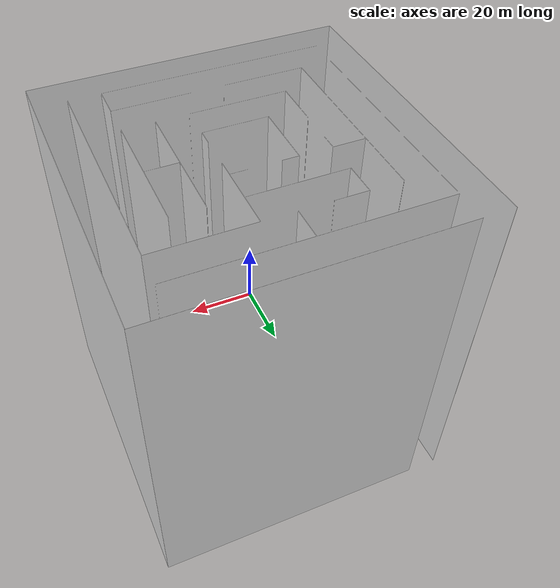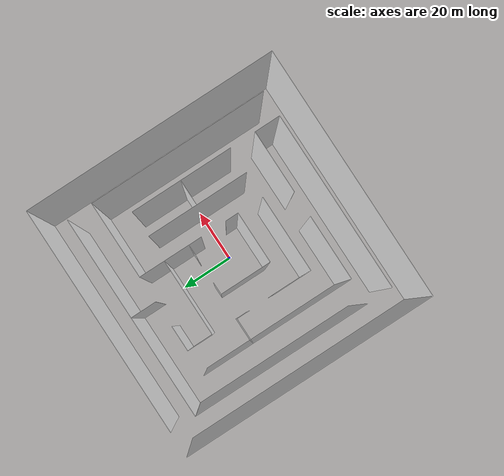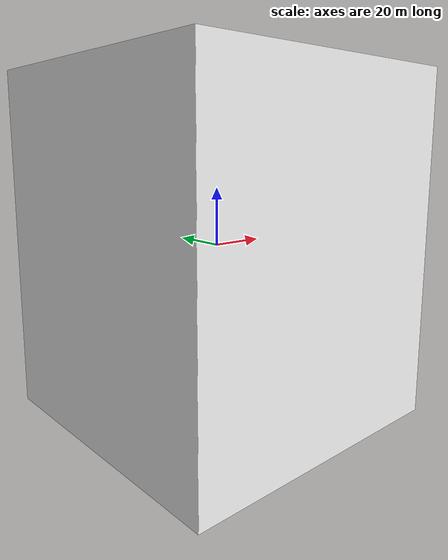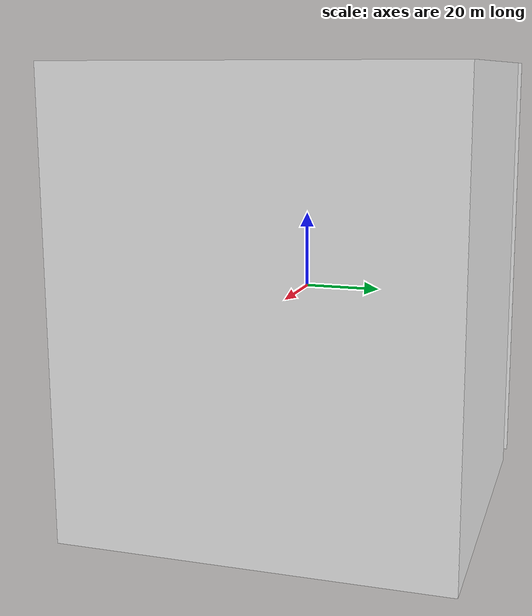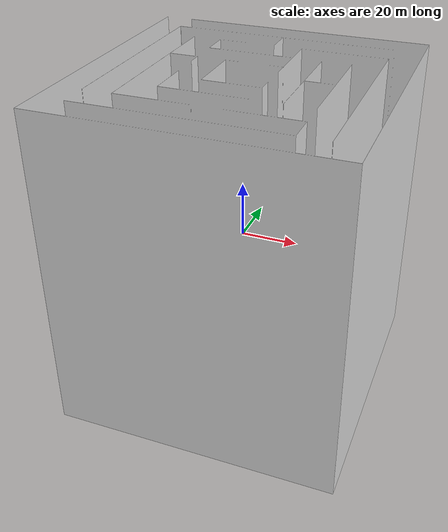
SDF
<?xml version="1.0" ?>
<sdf version="1.6">
	<model name='maze'>
		<pose>0 0 0 0 0 0</pose>
		<link name='maze_link'>

			<collision name="collision_maze">
				<geometry>
					<mesh>
					<uri>model://maze/tt.dae</uri>
					</mesh>
				</geometry>
				<surface>
					<bounce>
						<restitution_coefficient>0.5</restitution_coefficient>
					</bounce>
				</surface>
			</collision>
			<visual name='maze_visual'>
				<cast_shadows>false</cast_shadows>
				<geometry>
					<mesh>
					<uri>model://maze/tt.dae</uri>
					</mesh>
				</geometry>
				<material>
          			<script>
            			<name>Gazebo/White</name>
            			<uri>file://media/materials/scripts/gazebo.material</uri>
          			</script>
        		</material>
			</visual>
		</link>
	</model>
</sdf>
